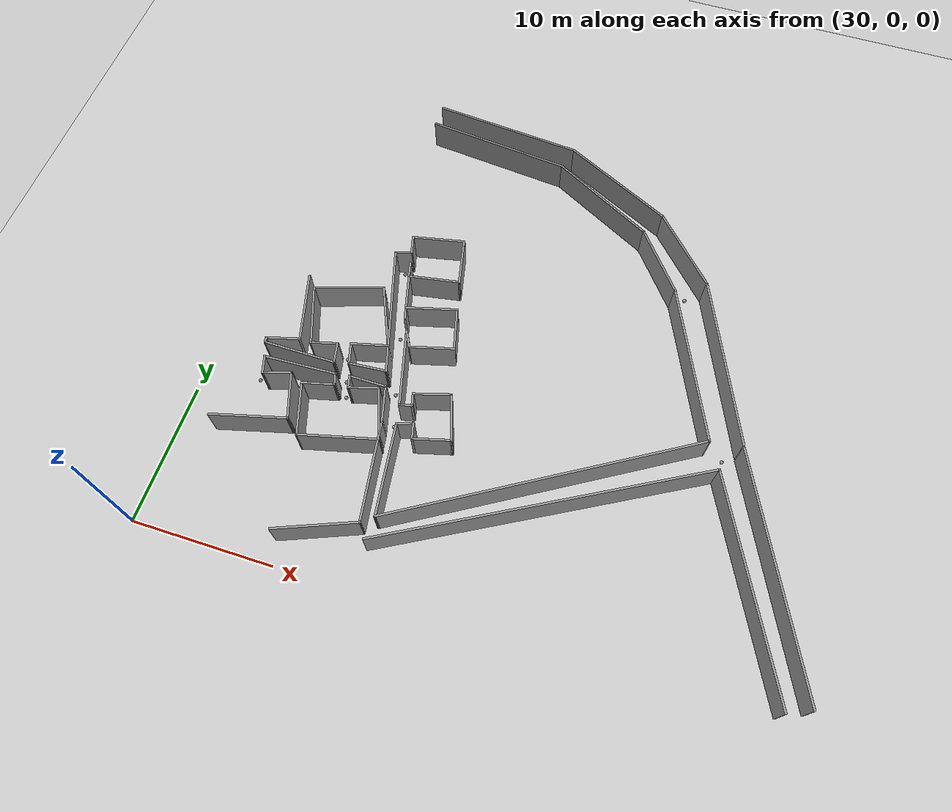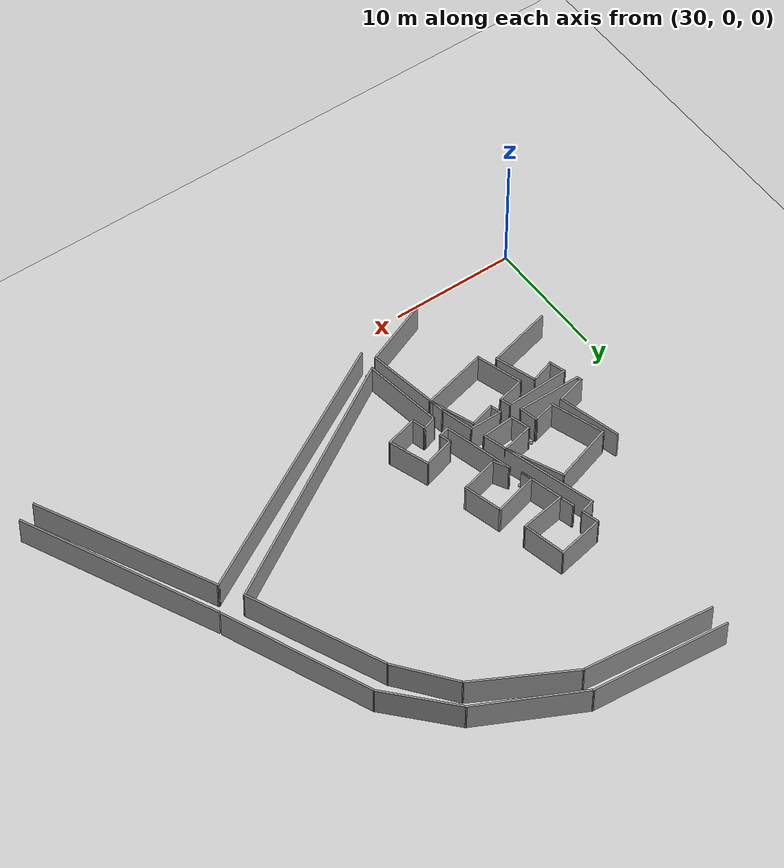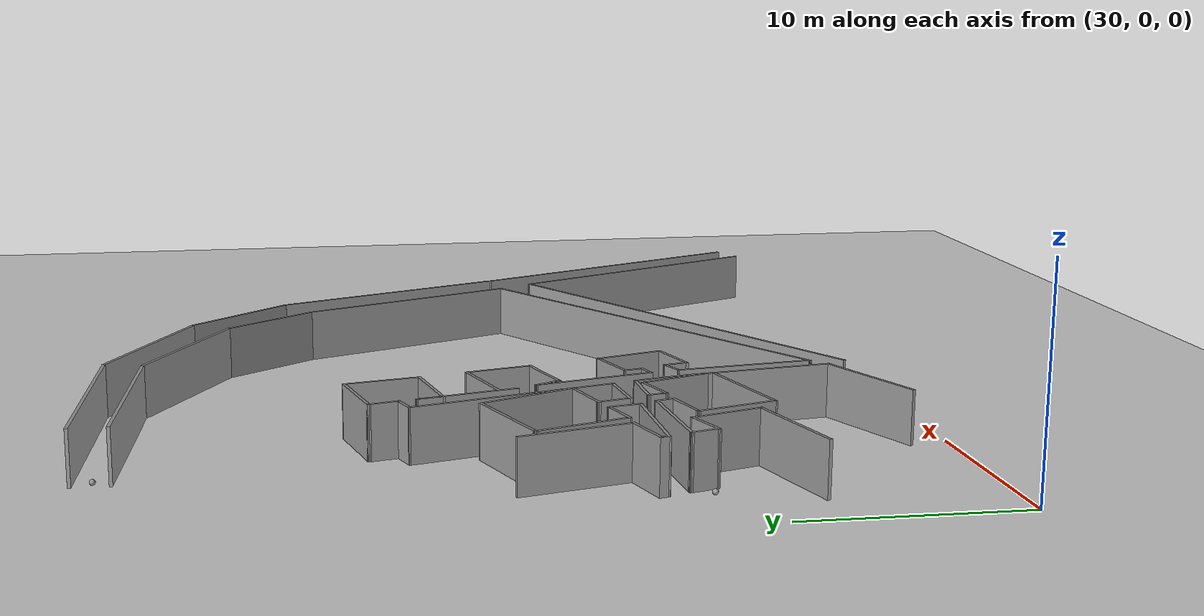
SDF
<sdf version="1.7">
 <world name="default">
  <model name="ground_plane">
   <static>1</static>
   <link name="link">
    <collision name="collision">
     <geometry><plane><normal>0 0 1</normal><size>100 100</size></plane></geometry>
     <surface><friction><ode><mu>100</mu><mu2>50</mu2></ode></friction></surface>
    </collision>
    <visual name="visual">
     <cast_shadows>0</cast_shadows>
     <geometry><plane><normal>0 0 1</normal><size>100 100</size></plane></geometry>
     <material>
      <script><uri>file://media/materials/scripts/gazebo.material</uri><name>Gazebo/Grey</name></script>
     </material>
    </visual>
   </link>
  </model>
  <model name="final_max_v1">
   <pose>-2.5231 0.6891 0 0 -0 0</pose>
   <link name="Wall_122">
    <collision name="Wall_122_Collision">
     <geometry><box><size>11.1366 0.15 2.5</size></box></geometry>
     <pose>0 0 1.25 0 -0 0</pose>
    </collision>
    <visual name="Wall_122_Visual">
     <pose>0 0 1.25 0 -0 0</pose>
     <geometry><box><size>11.1366 0.15 2.5</size></box></geometry>
     <material>
      <script><uri>file://media/materials/scripts/gazebo.material</uri><name>Gazebo/Grey</name></script>
      <ambient>1 1 1 1</ambient>
     </material>
     <meta><layer>0</layer></meta>
    </visual>
    <pose>46.89 36.2808 0 0 -0 -0.083837</pose>
   </link>
   <link name="Wall_123">
    <collision name="Wall_123_Collision">
     <geometry><box><size>8.99588 0.15 2.5</size></box></geometry>
     <pose>0 0 1.25 0 -0 0</pose>
    </collision>
    <visual name="Wall_123_Visual">
     <pose>0 0 1.25 0 -0 0</pose>
     <geometry><box><size>8.99588 0.15 2.5</size></box></geometry>
     <material>
      <script><uri>file://media/materials/scripts/gazebo.material</uri><name>Gazebo/Grey</name></script>
      <ambient>1 1 1 1</ambient>
     </material>
     <meta><layer>0</layer></meta>
    </visual>
    <pose>56.32 33.8428 0 0 -0 -0.463648</pose>
   </link>
   <link name="Wall_124">
    <collision name="Wall_124_Collision">
     <geometry><box><size>6.5786 0.15 2.5</size></box></geometry>
     <pose>0 0 1.25 0 -0 0</pose>
    </collision>
    <visual name="Wall_124_Visual">
     <pose>0 0 1.25 0 -0 0</pose>
     <geometry><box><size>6.5786 0.15 2.5</size></box></geometry>
     <material>
      <script><uri>file://media/materials/scripts/gazebo.material</uri><name>Gazebo/Grey</name></script>
      <ambient>1 1 1 1</ambient>
     </material>
     <meta><layer>0</layer></meta>
    </visual>
    <pose>62.4457 29.4933 0 0 -0 -0.829799</pose>
   </link>
   <link name="Wall_223">
    <collision name="Wall_223_Collision">
     <geometry><box><size>10.6867 0.15 2.5</size></box></geometry>
     <pose>0 0 1.25 0 -0 0</pose>
    </collision>
    <visual name="Wall_223_Visual">
     <pose>0 0 1.25 0 -0 0</pose>
     <geometry><box><size>10.6867 0.15 2.5</size></box></geometry>
     <material>
      <script><uri>file://media/materials/scripts/gazebo.material</uri><name>Gazebo/Grey</name></script>
      <ambient>1 1 1 1</ambient>
     </material>
     <meta><layer>0</layer></meta>
    </visual>
    <pose>46.6509 34.5758 0 0 -0 -0.096193</pose>
   </link>
   <link name="Wall_224">
    <collision name="Wall_224_Collision">
     <geometry><box><size>8.50581 0.15 2.5</size></box></geometry>
     <pose>0 0 1.25 0 -0 0</pose>
    </collision>
    <visual name="Wall_224_Visual">
     <pose>0 0 1.25 0 -0 0</pose>
     <geometry><box><size>8.50581 0.15 2.5</size></box></geometry>
     <material>
      <script><uri>file://media/materials/scripts/gazebo.material</uri><name>Gazebo/Grey</name></script>
      <ambient>1 1 1 1</ambient>
     </material>
     <meta><layer>0</layer></meta>
    </visual>
    <pose>55.5749 32.0918 0 0 -0 -0.493196</pose>
   </link>
   <link name="Wall_225">
    <collision name="Wall_225_Collision">
     <geometry><box><size>5.52393 0.15 2.5</size></box></geometry>
     <pose>0 0 1.25 0 -0 0</pose>
    </collision>
    <visual name="Wall_225_Visual">
     <pose>0 0 1.25 0 -0 0</pose>
     <geometry><box><size>5.52393 0.15 2.5</size></box></geometry>
     <material>
      <script><uri>file://media/materials/scripts/gazebo.material</uri><name>Gazebo/Grey</name></script>
      <ambient>1 1 1 1</ambient>
     </material>
     <meta><layer>0</layer></meta>
    </visual>
    <pose>60.9109 27.9978 0 0 -0 -0.90675</pose>
   </link>
   <link name="Wall_226">
    <collision name="Wall_226_Collision">
     <geometry><box><size>11.7237 0.15 2.5</size></box></geometry>
     <pose>0 0 1.25 0 -0 0</pose>
    </collision>
    <visual name="Wall_226_Visual">
     <pose>0 0 1.25 0 -0 0</pose>
     <geometry><box><size>11.7237 0.15 2.5</size></box></geometry>
     <material>
      <script><uri>file://media/materials/scripts/gazebo.material</uri><name>Gazebo/Grey</name></script>
      <ambient>1 1 1 1</ambient>
     </material>
     <meta><layer>0</layer></meta>
    </visual>
    <pose>64.9129 20.5918 0 0 -0 -1.15338</pose>
   </link>
   <link name="Wall_229">
    <collision name="Wall_229_Collision">
     <geometry><box><size>12.5433 0.15 2.5</size></box></geometry>
     <pose>0 0 1.25 0 -0 0</pose>
    </collision>
    <visual name="Wall_229_Visual">
     <pose>0 0 1.25 0 -0 0</pose>
     <geometry><box><size>12.5433 0.15 2.5</size></box></geometry>
     <material>
      <script><uri>file://media/materials/scripts/gazebo.material</uri><name>Gazebo/Grey</name></script>
      <ambient>1 1 1 1</ambient>
     </material>
     <meta><layer>0</layer></meta>
    </visual>
    <pose>67.0397 21.4191 0 0 -0 -1.16884</pose>
   </link>
   <link name="Wall_246">
    <collision name="Wall_246_Collision">
     <geometry><box><size>5.25 0.15 2.5</size></box></geometry>
     <pose>0 0 1.25 0 -0 0</pose>
    </collision>
    <visual name="Wall_246_Visual">
     <pose>0 0 1.25 0 -0 0</pose>
     <geometry><box><size>5.25 0.15 2.5</size></box></geometry>
     <material>
      <script><uri>file://media/materials/scripts/gazebo.material</uri><name>Gazebo/Grey</name></script>
      <ambient>1 1 1 1</ambient>
     </material>
     <meta><layer>0</layer></meta>
    </visual>
    <pose>38.0136 16.6136 0 0 -0 -1.309</pose>
   </link>
   <link name="Wall_247">
    <collision name="Wall_247_Collision">
     <geometry><box><size>2.5 0.15 2.5</size></box></geometry>
     <pose>0 0 1.25 0 -0 0</pose>
    </collision>
    <visual name="Wall_247_Visual">
     <pose>0 0 1.25 0 -0 0</pose>
     <geometry><box><size>2.5 0.15 2.5</size></box></geometry>
     <material>
      <script><uri>file://media/materials/scripts/gazebo.material</uri><name>Gazebo/Grey</name></script>
      <ambient>1 1 1 1</ambient>
     </material>
     <meta><layer>0</layer></meta>
    </visual>
    <pose>37.5386 13.8464 0 0 -0 -2.87979</pose>
   </link>
   <link name="Wall_248">
    <collision name="Wall_248_Collision">
     <geometry><box><size>0.5 0.15 2.5</size></box></geometry>
     <pose>0 0 1.25 0 -0 0</pose>
    </collision>
    <visual name="Wall_248_Visual">
     <pose>0 0 1.25 0 -0 0</pose>
     <geometry><box><size>0.5 0.15 2.5</size></box></geometry>
     <material>
      <script><uri>file://media/materials/scripts/gazebo.material</uri><name>Gazebo/Grey</name></script>
      <ambient>1 1 1 1</ambient>
     </material>
     <meta><layer>0</layer></meta>
    </visual>
    <pose>36.4489 13.3732 0 0 -0 -1.309</pose>
   </link>
   <link name="Wall_249">
    <collision name="Wall_249_Collision">
     <geometry><box><size>5.25 0.15 2.5</size></box></geometry>
     <pose>0 0 1.25 0 -0 0</pose>
    </collision>
    <visual name="Wall_249_Visual">
     <pose>0 0 1.25 0 -0 0</pose>
     <geometry><box><size>5.25 0.15 2.5</size></box></geometry>
     <material>
      <script><uri>file://media/materials/scripts/gazebo.material</uri><name>Gazebo/Grey</name></script>
      <ambient>1 1 1 1</ambient>
     </material>
     <meta><layer>0</layer></meta>
    </visual>
    <pose>39.0442 13.2042 0 0 -0 0</pose>
   </link>
   <link name="Wall_250">
    <collision name="Wall_250_Collision">
     <geometry><box><size>1.59344 0.15 2.5</size></box></geometry>
     <pose>0 0 1.25 0 -0 0</pose>
    </collision>
    <visual name="Wall_250_Visual">
     <pose>0 0 1.25 0 -0 0</pose>
     <geometry><box><size>1.59344 0.15 2.5</size></box></geometry>
     <material>
      <script><uri>file://media/materials/scripts/gazebo.material</uri><name>Gazebo/Grey</name></script>
      <ambient>1 1 1 1</ambient>
     </material>
     <meta><layer>0</layer></meta>
    </visual>
    <pose>41.4428 13.9098 0 0 -0 1.78212</pose>
   </link>
   <link name="Wall_251">
    <collision name="Wall_251_Collision">
     <geometry><box><size>2 0.15 2.5</size></box></geometry>
     <pose>0 0 1.25 0 -0 0</pose>
    </collision>
    <visual name="Wall_251_Visual">
     <pose>0 0 1.25 0 -0 0</pose>
     <geometry><box><size>2 0.15 2.5</size></box></geometry>
     <material>
      <script><uri>file://media/materials/scripts/gazebo.material</uri><name>Gazebo/Grey</name></script>
      <ambient>1 1 1 1</ambient>
     </material>
     <meta><layer>0</layer></meta>
    </visual>
    <pose>40.3979 14.3761 0 0 -0 -2.87979</pose>
   </link>
   <link name="Wall_252">
    <collision name="Wall_252_Collision">
     <geometry><box><size>4.54595 0.15 2.5</size></box></geometry>
     <pose>0 0 1.25 0 -0 0</pose>
    </collision>
    <visual name="Wall_252_Visual">
     <pose>0 0 1.25 0 -0 0</pose>
     <geometry><box><size>4.54595 0.15 2.5</size></box></geometry>
     <material>
      <script><uri>file://media/materials/scripts/gazebo.material</uri><name>Gazebo/Grey</name></script>
      <ambient>1 1 1 1</ambient>
     </material>
     <meta><layer>0</layer></meta>
    </visual>
    <pose>38.7724 16.2092 0 0 -0 1.91035</pose>
   </link>
   <link name="Wall_253">
    <collision name="Wall_253_Collision">
     <geometry><box><size>5.09377 0.15 2.5</size></box></geometry>
     <pose>0 0 1.25 0 -0 0</pose>
    </collision>
    <visual name="Wall_253_Visual">
     <pose>0 0 1.25 0 -0 0</pose>
     <geometry><box><size>5.09377 0.15 2.5</size></box></geometry>
     <material>
      <script><uri>file://media/materials/scripts/gazebo.material</uri><name>Gazebo/Grey</name></script>
      <ambient>1 1 1 1</ambient>
     </material>
     <meta><layer>0</layer></meta>
    </visual>
    <pose>40.3922 19.0425 0 0 -0 0.312901</pose>
   </link>
   <link name="Wall_254">
    <collision name="Wall_254_Collision">
     <geometry><box><size>4.85576 0.15 2.5</size></box></geometry>
     <pose>0 0 1.25 0 -0 0</pose>
    </collision>
    <visual name="Wall_254_Visual">
     <pose>0 0 1.25 0 -0 0</pose>
     <geometry><box><size>4.85576 0.15 2.5</size></box></geometry>
     <material>
      <script><uri>file://media/materials/scripts/gazebo.material</uri><name>Gazebo/Grey</name></script>
      <ambient>1 1 1 1</ambient>
     </material>
     <meta><layer>0</layer></meta>
    </visual>
    <pose>43.7125 17.6591 0 0 -0 -1.1466</pose>
   </link>
   <link name="Wall_255">
    <collision name="Wall_255_Collision">
     <geometry><box><size>2.71685 0.15 2.5</size></box></geometry>
     <pose>0 0 1.25 0 -0 0</pose>
    </collision>
    <visual name="Wall_255_Visual">
     <pose>0 0 1.25 0 -0 0</pose>
     <geometry><box><size>2.71685 0.15 2.5</size></box></geometry>
     <material>
      <script><uri>file://media/materials/scripts/gazebo.material</uri><name>Gazebo/Grey</name></script>
      <ambient>1 1 1 1</ambient>
     </material>
     <meta><layer>0</layer></meta>
    </visual>
    <pose>43.4358 15.2035 0 0 -0 -2.89661</pose>
   </link>
   <link name="Wall_256">
    <collision name="Wall_256_Collision">
     <geometry><box><size>1.66075 0.15 2.5</size></box></geometry>
     <pose>0 0 1.25 0 -0 0</pose>
    </collision>
    <visual name="Wall_256_Visual">
     <pose>0 0 1.25 0 -0 0</pose>
     <geometry><box><size>1.66075 0.15 2.5</size></box></geometry>
     <material>
      <script><uri>file://media/materials/scripts/gazebo.material</uri><name>Gazebo/Grey</name></script>
      <ambient>1 1 1 1</ambient>
     </material>
     <meta><layer>0</layer></meta>
    </visual>
    <pose>42.3982 14.1659 0 0 -0 -1.2925</pose>
   </link>
   <link name="Wall_257">
    <collision name="Wall_257_Collision">
     <geometry><box><size>2.78673 0.15 2.5</size></box></geometry>
     <pose>0 0 1.25 0 -0 0</pose>
    </collision>
    <visual name="Wall_257_Visual">
     <pose>0 0 1.25 0 -0 0</pose>
     <geometry><box><size>2.78673 0.15 2.5</size></box></geometry>
     <material>
      <script><uri>file://media/materials/scripts/gazebo.material</uri><name>Gazebo/Grey</name></script>
      <ambient>1 1 1 1</ambient>
     </material>
     <meta><layer>0</layer></meta>
    </visual>
    <pose>43.92 13.5433 0 0 -0 0.078784</pose>
   </link>
   <link name="Wall_258">
    <collision name="Wall_258_Collision">
     <geometry><box><size>9.73731 0.15 2.5</size></box></geometry>
     <pose>0 0 1.25 0 -0 0</pose>
    </collision>
    <visual name="Wall_258_Visual">
     <pose>0 0 1.25 0 -0 0</pose>
     <geometry><box><size>9.73731 0.15 2.5</size></box></geometry>
     <material>
      <script><uri>file://media/materials/scripts/gazebo.material</uri><name>Gazebo/Grey</name></script>
      <ambient>1 1 1 1</ambient>
     </material>
     <meta><layer>0</layer></meta>
    </visual>
    <pose>43.8854 18.2471 0 0 -0 1.85603</pose>
   </link>
   <link name="Wall_259">
    <collision name="Wall_259_Collision">
     <geometry><box><size>1.30954 0.15 2.5</size></box></geometry>
     <pose>0 0 1.25 0 -0 0</pose>
    </collision>
    <visual name="Wall_259_Visual">
     <pose>0 0 1.25 0 -0 0</pose>
     <geometry><box><size>1.30954 0.15 2.5</size></box></geometry>
     <material>
      <script><uri>file://media/materials/scripts/gazebo.material</uri><name>Gazebo/Grey</name></script>
      <ambient>1 1 1 1</ambient>
     </material>
     <meta><layer>0</layer></meta>
    </visual>
    <pose>43.0899 23.02 0 0 -0 0.302885</pose>
   </link>
   <link name="Wall_260">
    <collision name="Wall_260_Collision">
     <geometry><box><size>1.5 0.15 2.5</size></box></geometry>
     <pose>0 0 1.25 0 -0 0</pose>
    </collision>
    <visual name="Wall_260_Visual">
     <pose>0 0 1.25 0 -0 0</pose>
     <geometry><box><size>1.5 0.15 2.5</size></box></geometry>
     <material>
      <script><uri>file://media/materials/scripts/gazebo.material</uri><name>Gazebo/Grey</name></script>
      <ambient>1 1 1 1</ambient>
     </material>
     <meta><layer>0</layer></meta>
    </visual>
    <pose>43.4686 23.8449 0 0 -0 1.8326</pose>
   </link>
   <link name="Wall_261">
    <collision name="Wall_261_Collision">
     <geometry><box><size>3.89984 0.15 2.5</size></box></geometry>
     <pose>0 0 1.25 0 -0 0</pose>
    </collision>
    <visual name="Wall_261_Visual">
     <pose>0 0 1.25 0 -0 0</pose>
     <geometry><box><size>3.89984 0.15 2.5</size></box></geometry>
     <material>
      <script><uri>file://media/materials/scripts/gazebo.material</uri><name>Gazebo/Grey</name></script>
      <ambient>1 1 1 1</ambient>
     </material>
     <meta><layer>0</layer></meta>
    </visual>
    <pose>45.1287 24.8825 0 0 -0 0.207133</pose>
   </link>
   <link name="Wall_262">
    <collision name="Wall_262_Collision">
     <geometry><box><size>3.6238 0.15 2.5</size></box></geometry>
     <pose>0 0 1.25 0 -0 0</pose>
    </collision>
    <visual name="Wall_262_Visual">
     <pose>0 0 1.25 0 -0 0</pose>
     <geometry><box><size>3.6238 0.15 2.5</size></box></geometry>
     <material>
      <script><uri>file://media/materials/scripts/gazebo.material</uri><name>Gazebo/Grey</name></script>
      <ambient>1 1 1 1</ambient>
     </material>
     <meta><layer>0</layer></meta>
    </visual>
    <pose>47.344 23.5733 0 0 -0 -1.34997</pose>
   </link>
   <link name="Wall_263">
    <collision name="Wall_263_Collision">
     <geometry><box><size>3.80044 0.15 2.5</size></box></geometry>
     <pose>0 0 1.25 0 -0 0</pose>
    </collision>
    <visual name="Wall_263_Visual">
     <pose>0 0 1.25 0 -0 0</pose>
     <geometry><box><size>3.80044 0.15 2.5</size></box></geometry>
     <material>
      <script><uri>file://media/materials/scripts/gazebo.material</uri><name>Gazebo/Grey</name></script>
      <ambient>1 1 1 1</ambient>
     </material>
     <meta><layer>0</layer></meta>
    </visual>
    <pose>45.926 21.5673 0 0 -0 -2.97021</pose>
   </link>
   <link name="Wall_264">
    <collision name="Wall_264_Collision">
     <geometry><box><size>1.29082 0.15 2.5</size></box></geometry>
     <pose>0 0 1.25 0 -0 0</pose>
    </collision>
    <visual name="Wall_264_Visual">
     <pose>0 0 1.25 0 -0 0</pose>
     <geometry><box><size>1.29082 0.15 2.5</size></box></geometry>
     <material>
      <script><uri>file://media/materials/scripts/gazebo.material</uri><name>Gazebo/Grey</name></script>
      <ambient>1 1 1 1</ambient>
     </material>
     <meta><layer>0</layer></meta>
    </visual>
    <pose>43.9892 21.8094 0 0 -0 1.81577</pose>
   </link>
   <link name="Wall_265">
    <collision name="Wall_265_Collision">
     <geometry><box><size>4.75 0.15 2.5</size></box></geometry>
     <pose>0 0 1.25 0 -0 0</pose>
    </collision>
    <visual name="Wall_265_Visual">
     <pose>0 0 1.25 0 -0 0</pose>
     <geometry><box><size>4.75 0.15 2.5</size></box></geometry>
     <material>
      <script><uri>file://media/materials/scripts/gazebo.material</uri><name>Gazebo/Grey</name></script>
      <ambient>1 1 1 1</ambient>
     </material>
     <meta><layer>0</layer></meta>
    </visual>
    <pose>44.4461 20.1412 0 0 -0 -1.309</pose>
   </link>
   <link name="Wall_266">
    <collision name="Wall_266_Collision">
     <geometry><box><size>1 0.15 2.5</size></box></geometry>
     <pose>0 0 1.25 0 -0 0</pose>
    </collision>
    <visual name="Wall_266_Visual">
     <pose>0 0 1.25 0 -0 0</pose>
     <geometry><box><size>1 0.15 2.5</size></box></geometry>
     <material>
      <script><uri>file://media/materials/scripts/gazebo.material</uri><name>Gazebo/Grey</name></script>
      <ambient>1 1 1 1</ambient>
     </material>
     <meta><layer>0</layer></meta>
    </visual>
    <pose>44.9314 18.3301 0 0 -0 1.8326</pose>
   </link>
   <link name="Wall_267">
    <collision name="Wall_267_Collision">
     <geometry><box><size>3.75 0.15 2.5</size></box></geometry>
     <pose>0 0 1.25 0 -0 0</pose>
    </collision>
    <visual name="Wall_267_Visual">
     <pose>0 0 1.25 0 -0 0</pose>
     <geometry><box><size>3.75 0.15 2.5</size></box></geometry>
     <material>
      <script><uri>file://media/materials/scripts/gazebo.material</uri><name>Gazebo/Grey</name></script>
      <ambient>1 1 1 1</ambient>
     </material>
     <meta><layer>0</layer></meta>
    </visual>
    <pose>46.5601 19.2065 0 0 -0 0.261799</pose>
   </link>
   <link name="Wall_268">
    <collision name="Wall_268_Collision">
     <geometry><box><size>3.25 0.15 2.5</size></box></geometry>
     <pose>0 0 1.25 0 -0 0</pose>
    </collision>
    <visual name="Wall_268_Visual">
     <pose>0 0 1.25 0 -0 0</pose>
     <geometry><box><size>3.25 0.15 2.5</size></box></geometry>
     <material>
      <script><uri>file://media/materials/scripts/gazebo.material</uri><name>Gazebo/Grey</name></script>
      <ambient>1 1 1 1</ambient>
     </material>
     <meta><layer>0</layer></meta>
    </visual>
    <pose>48.6999 18.1752 0 0 -0 -1.309</pose>
   </link>
   <link name="Wall_269">
    <collision name="Wall_269_Collision">
     <geometry><box><size>3.25 0.15 2.5</size></box></geometry>
     <pose>0 0 1.25 0 -0 0</pose>
    </collision>
    <visual name="Wall_269_Visual">
     <pose>0 0 1.25 0 -0 0</pose>
     <geometry><box><size>3.25 0.15 2.5</size></box></geometry>
     <material>
      <script><uri>file://media/materials/scripts/gazebo.material</uri><name>Gazebo/Grey</name></script>
      <ambient>1 1 1 1</ambient>
     </material>
     <meta><layer>0</layer></meta>
    </visual>
    <pose>47.6039 16.2768 0 0 -0 -2.87979</pose>
   </link>
   <link name="Wall_270">
    <collision name="Wall_270_Collision">
     <geometry><box><size>1.3937 0.15 2.5</size></box></geometry>
     <pose>0 0 1.25 0 -0 0</pose>
    </collision>
    <visual name="Wall_270_Visual">
     <pose>0 0 1.25 0 -0 0</pose>
     <geometry><box><size>1.3937 0.15 2.5</size></box></geometry>
     <material>
      <script><uri>file://media/materials/scripts/gazebo.material</uri><name>Gazebo/Grey</name></script>
      <ambient>1 1 1 1</ambient>
     </material>
     <meta><layer>0</layer></meta>
    </visual>
    <pose>45.8088 16.4215 0 0 -0 2.07031</pose>
   </link>
   <link name="Wall_271">
    <collision name="Wall_271_Collision">
     <geometry><box><size>5.75 0.15 2.5</size></box></geometry>
     <pose>0 0 1.25 0 -0 0</pose>
    </collision>
    <visual name="Wall_271_Visual">
     <pose>0 0 1.25 0 -0 0</pose>
     <geometry><box><size>5.75 0.15 2.5</size></box></geometry>
     <material>
      <script><uri>file://media/materials/scripts/gazebo.material</uri><name>Gazebo/Grey</name></script>
      <ambient>1 1 1 1</ambient>
     </material>
     <meta><layer>0</layer></meta>
    </visual>
    <pose>46.2356 14.2628 0 0 -0 -1.309</pose>
   </link>
   <link name="Wall_272">
    <collision name="Wall_272_Collision">
     <geometry><box><size>1 0.15 2.5</size></box></geometry>
     <pose>0 0 1.25 0 -0 0</pose>
    </collision>
    <visual name="Wall_272_Visual">
     <pose>0 0 1.25 0 -0 0</pose>
     <geometry><box><size>1 0.15 2.5</size></box></geometry>
     <material>
      <script><uri>file://media/materials/scripts/gazebo.material</uri><name>Gazebo/Grey</name></script>
      <ambient>1 1 1 1</ambient>
     </material>
     <meta><layer>0</layer></meta>
    </visual>
    <pose>47.3709 11.6682 0 0 -0 0.261799</pose>
   </link>
   <link name="Wall_273">
    <collision name="Wall_273_Collision">
     <geometry><box><size>1 0.15 2.5</size></box></geometry>
     <pose>0 0 1.25 0 -0 0</pose>
    </collision>
    <visual name="Wall_273_Visual">
     <pose>0 0 1.25 0 -0 0</pose>
     <geometry><box><size>1 0.15 2.5</size></box></geometry>
     <material>
      <script><uri>file://media/materials/scripts/gazebo.material</uri><name>Gazebo/Grey</name></script>
      <ambient>1 1 1 1</ambient>
     </material>
     <meta><layer>0</layer></meta>
    </visual>
    <pose>47.6714 12.1887 0 0 -0 1.8326</pose>
   </link>
   <link name="Wall_274">
    <collision name="Wall_274_Collision">
     <geometry><box><size>2.70849 0.15 2.5</size></box></geometry>
     <pose>0 0 1.25 0 -0 0</pose>
    </collision>
    <visual name="Wall_274_Visual">
     <pose>0 0 1.25 0 -0 0</pose>
     <geometry><box><size>2.70849 0.15 2.5</size></box></geometry>
     <material>
      <script><uri>file://media/materials/scripts/gazebo.material</uri><name>Gazebo/Grey</name></script>
      <ambient>1 1 1 1</ambient>
     </material>
     <meta><layer>0</layer></meta>
    </visual>
    <pose>48.7888 12.9596 0 0 -0 0.285615</pose>
   </link>
   <link name="Wall_275">
    <collision name="Wall_275_Collision">
     <geometry><box><size>3.45989 0.15 2.5</size></box></geometry>
     <pose>0 0 1.25 0 -0 0</pose>
    </collision>
    <visual name="Wall_275_Visual">
     <pose>0 0 1.25 0 -0 0</pose>
     <geometry><box><size>3.45989 0.15 2.5</size></box></geometry>
     <material>
      <script><uri>file://media/materials/scripts/gazebo.material</uri><name>Gazebo/Grey</name></script>
      <ambient>1 1 1 1</ambient>
     </material>
     <meta><layer>0</layer></meta>
    </visual>
    <pose>50.5576 11.7562 0 0 -0 -1.23755</pose>
   </link>
   <link name="Wall_276">
    <collision name="Wall_276_Collision">
     <geometry><box><size>2.75 0.15 2.5</size></box></geometry>
     <pose>0 0 1.25 0 -0 0</pose>
    </collision>
    <visual name="Wall_276_Visual">
     <pose>0 0 1.25 0 -0 0</pose>
     <geometry><box><size>2.75 0.15 2.5</size></box></geometry>
     <material>
      <script><uri>file://media/materials/scripts/gazebo.material</uri><name>Gazebo/Grey</name></script>
      <ambient>1 1 1 1</ambient>
     </material>
     <meta><layer>0</layer></meta>
    </visual>
    <pose>49.8432 9.85581 0 0 -0 -2.87979</pose>
   </link>
   <link name="Wall_277">
    <collision name="Wall_277_Collision">
     <geometry><box><size>1.25 0.15 2.5</size></box></geometry>
     <pose>0 0 1.25 0 -0 0</pose>
    </collision>
    <visual name="Wall_277_Visual">
     <pose>0 0 1.25 0 -0 0</pose>
     <geometry><box><size>1.25 0.15 2.5</size></box></geometry>
     <material>
      <script><uri>file://media/materials/scripts/gazebo.material</uri><name>Gazebo/Grey</name></script>
      <ambient>1 1 1 1</ambient>
     </material>
     <meta><layer>0</layer></meta>
    </visual>
    <pose>48.4452 10.0506 0 0 -0 1.8326</pose>
   </link>
   <link name="Wall_279">
    <collision name="Wall_279_Collision">
     <geometry><box><size>2.75 0.15 2.5</size></box></geometry>
     <pose>0 0 1.25 0 -0 0</pose>
    </collision>
    <visual name="Wall_279_Visual">
     <pose>0 0 1.25 0 -0 0</pose>
     <geometry><box><size>2.75 0.15 2.5</size></box></geometry>
     <material>
      <script><uri>file://media/materials/scripts/gazebo.material</uri><name>Gazebo/Grey</name></script>
      <ambient>1 1 1 1</ambient>
     </material>
     <meta><layer>0</layer></meta>
    </visual>
    <pose>45.9379 11.294 0 0 -0 1.8326</pose>
   </link>
   <link name="Wall_280">
    <collision name="Wall_280_Collision">
     <geometry><box><size>2.75 0.15 2.5</size></box></geometry>
     <pose>0 0 1.25 0 -0 0</pose>
    </collision>
    <visual name="Wall_280_Visual">
     <pose>0 0 1.25 0 -0 0</pose>
     <geometry><box><size>2.75 0.15 2.5</size></box></geometry>
     <material>
      <script><uri>file://media/materials/scripts/gazebo.material</uri><name>Gazebo/Grey</name></script>
      <ambient>1 1 1 1</ambient>
     </material>
     <meta><layer>0</layer></meta>
    </visual>
    <pose>44.3014 12.5497 0 0 -0 3.14159</pose>
   </link>
   <link name="Wall_281">
    <collision name="Wall_281_Collision">
     <geometry><box><size>1 0.15 2.5</size></box></geometry>
     <pose>0 0 1.25 0 -0 0</pose>
    </collision>
    <visual name="Wall_281_Visual">
     <pose>0 0 1.25 0 -0 0</pose>
     <geometry><box><size>1 0.15 2.5</size></box></geometry>
     <material>
      <script><uri>file://media/materials/scripts/gazebo.material</uri><name>Gazebo/Grey</name></script>
      <ambient>1 1 1 1</ambient>
     </material>
     <meta><layer>0</layer></meta>
    </visual>
    <pose>43.1114 12.1392 0 0 -0 -1.309</pose>
   </link>
   <link name="Wall_282">
    <collision name="Wall_282_Collision">
     <geometry><box><size>2.21277 0.15 2.5</size></box></geometry>
     <pose>0 0 1.25 0 -0 0</pose>
    </collision>
    <visual name="Wall_282_Visual">
     <pose>0 0 1.25 0 -0 0</pose>
     <geometry><box><size>2.21277 0.15 2.5</size></box></geometry>
     <material>
      <script><uri>file://media/materials/scripts/gazebo.material</uri><name>Gazebo/Grey</name></script>
      <ambient>1 1 1 1</ambient>
     </material>
     <meta><layer>0</layer></meta>
    </visual>
    <pose>44.2128 12.0131 0 0 -0 0.27937</pose>
   </link>
   <link name="Wall_283">
    <collision name="Wall_283_Collision">
     <geometry><box><size>3.88124 0.15 2.5</size></box></geometry>
     <pose>0 0 1.25 0 -0 0</pose>
    </collision>
    <visual name="Wall_283_Visual">
     <pose>0 0 1.25 0 -0 0</pose>
     <geometry><box><size>3.88124 0.15 2.5</size></box></geometry>
     <material>
      <script><uri>file://media/materials/scripts/gazebo.material</uri><name>Gazebo/Grey</name></script>
      <ambient>1 1 1 1</ambient>
     </material>
     <meta><layer>0</layer></meta>
    </visual>
    <pose>45.8659 10.5532 0 0 -0 -1.20825</pose>
   </link>
   <link name="Wall_284">
    <collision name="Wall_284_Collision">
     <geometry><box><size>5.6061 0.15 2.5</size></box></geometry>
     <pose>0 0 1.25 0 -0 0</pose>
    </collision>
    <visual name="Wall_284_Visual">
     <pose>0 0 1.25 0 -0 0</pose>
     <geometry><box><size>5.6061 0.15 2.5</size></box></geometry>
     <material>
      <script><uri>file://media/materials/scripts/gazebo.material</uri><name>Gazebo/Grey</name></script>
      <ambient>1 1 1 1</ambient>
     </material>
     <meta><layer>0</layer></meta>
    </visual>
    <pose>43.8809 8.14718 0 0 -0 -2.89661</pose>
   </link>
   <link name="Wall_285">
    <collision name="Wall_285_Collision">
     <geometry><box><size>3.93562 0.15 2.5</size></box></geometry>
     <pose>0 0 1.25 0 -0 0</pose>
    </collision>
    <visual name="Wall_285_Visual">
     <pose>0 0 1.25 0 -0 0</pose>
     <geometry><box><size>3.93562 0.15 2.5</size></box></geometry>
     <material>
      <script><uri>file://media/materials/scripts/gazebo.material</uri><name>Gazebo/Grey</name></script>
      <ambient>1 1 1 1</ambient>
     </material>
     <meta><layer>0</layer></meta>
    </visual>
    <pose>40.6629 9.29002 0 0 -0 1.87747</pose>
   </link>
   <link name="Wall_286">
    <collision name="Wall_286_Collision">
     <geometry><box><size>2.38204 0.15 2.5</size></box></geometry>
     <pose>0 0 1.25 0 -0 0</pose>
    </collision>
    <visual name="Wall_286_Visual">
     <pose>0 0 1.25 0 -0 0</pose>
     <geometry><box><size>2.38204 0.15 2.5</size></box></geometry>
     <material>
      <script><uri>file://media/materials/scripts/gazebo.material</uri><name>Gazebo/Grey</name></script>
      <ambient>1 1 1 1</ambient>
     </material>
     <meta><layer>0</layer></meta>
    </visual>
    <pose>41.1742 11.3652 0 0 -0 0.244979</pose>
   </link>
   <link name="Wall_287">
    <collision name="Wall_287_Collision">
     <geometry><box><size>0.968127 0.15 2.5</size></box></geometry>
     <pose>0 0 1.25 0 -0 0</pose>
    </collision>
    <visual name="Wall_287_Visual">
     <pose>0 0 1.25 0 -0 0</pose>
     <geometry><box><size>0.968127 0.15 2.5</size></box></geometry>
     <material>
      <script><uri>file://media/materials/scripts/gazebo.material</uri><name>Gazebo/Grey</name></script>
      <ambient>1 1 1 1</ambient>
     </material>
     <meta><layer>0</layer></meta>
    </visual>
    <pose>42.1366 12.0268 0 0 -0 1.86929</pose>
   </link>
   <link name="Wall_288">
    <collision name="Wall_288_Collision">
     <geometry><box><size>5.2684 0.15 2.5</size></box></geometry>
     <pose>0 0 1.25 0 -0 0</pose>
    </collision>
    <visual name="Wall_288_Visual">
     <pose>0 0 1.25 0 -0 0</pose>
     <geometry><box><size>5.2684 0.15 2.5</size></box></geometry>
     <material>
      <script><uri>file://media/materials/scripts/gazebo.material</uri><name>Gazebo/Grey</name></script>
      <ambient>1 1 1 1</ambient>
     </material>
     <meta><layer>0</layer></meta>
    </visual>
    <pose>39.4599 12.2975 0 0 -0 -3.09457</pose>
   </link>
   <link name="Wall_289">
    <collision name="Wall_289_Collision">
     <geometry><box><size>1.40597 0.15 2.5</size></box></geometry>
     <pose>0 0 1.25 0 -0 0</pose>
    </collision>
    <visual name="Wall_289_Visual">
     <pose>0 0 1.25 0 -0 0</pose>
     <geometry><box><size>1.40597 0.15 2.5</size></box></geometry>
     <material>
      <script><uri>file://media/materials/scripts/gazebo.material</uri><name>Gazebo/Grey</name></script>
      <ambient>1 1 1 1</ambient>
     </material>
     <meta><layer>0</layer></meta>
    </visual>
    <pose>37.084 11.5757 0 0 -0 -1.27934</pose>
   </link>
   <link name="Wall_290">
    <collision name="Wall_290_Collision">
     <geometry><box><size>2.10926 0.15 2.5</size></box></geometry>
     <pose>0 0 1.25 0 -0 0</pose>
    </collision>
    <visual name="Wall_290_Visual">
     <pose>0 0 1.25 0 -0 0</pose>
     <geometry><box><size>2.10926 0.15 2.5</size></box></geometry>
     <material>
      <script><uri>file://media/materials/scripts/gazebo.material</uri><name>Gazebo/Grey</name></script>
      <ambient>1 1 1 1</ambient>
     </material>
     <meta><layer>0</layer></meta>
    </visual>
    <pose>38.1968 11.275 0 0 -0 0.312042</pose>
   </link>
   <link name="Wall_291">
    <collision name="Wall_291_Collision">
     <geometry><box><size>3.51678 0.15 2.5</size></box></geometry>
     <pose>0 0 1.25 0 -0 0</pose>
    </collision>
    <visual name="Wall_291_Visual">
     <pose>0 0 1.25 0 -0 0</pose>
     <geometry><box><size>3.51678 0.15 2.5</size></box></geometry>
     <material>
      <script><uri>file://media/materials/scripts/gazebo.material</uri><name>Gazebo/Grey</name></script>
      <ambient>1 1 1 1</ambient>
     </material>
     <meta><layer>0</layer></meta>
    </visual>
    <pose>39.6704 9.98175 0 0 -0 -1.2434</pose>
   </link>
   <link name="Wall_292">
    <collision name="Wall_292_Collision">
     <geometry><box><size>5.43122 0.15 2.5</size></box></geometry>
     <pose>0 0 1.25 0 -0 0</pose>
    </collision>
    <visual name="Wall_292_Visual">
     <pose>0 0 1.25 0 -0 0</pose>
     <geometry><box><size>5.43122 0.15 2.5</size></box></geometry>
     <material>
      <script><uri>file://media/materials/scripts/gazebo.material</uri><name>Gazebo/Grey</name></script>
      <ambient>1 1 1 1</ambient>
     </material>
     <meta><layer>0</layer></meta>
    </visual>
    <pose>37.6554 7.72613 0 0 -0 -2.88833</pose>
   </link>
   <link name="Wall_306">
    <collision name="Wall_306_Collision">
     <geometry><box><size>23.3769 0.15 2.5</size></box></geometry>
     <pose>0 0 1.25 0 -0 0</pose>
    </collision>
    <visual name="Wall_306_Visual">
     <pose>0 0 1.25 0 -0 0</pose>
     <geometry><box><size>23.3769 0.15 2.5</size></box></geometry>
     <material>
      <script><uri>file://media/materials/scripts/gazebo.material</uri><name>Gazebo/Grey</name></script>
      <ambient>1 1 1 1</ambient>
     </material>
     <meta><layer>0</layer></meta>
    </visual>
    <pose>58.1379 7.89318 0 0 -0 -2.63362</pose>
   </link>
   <link name="Wall_315">
    <collision name="Wall_315_Collision">
     <geometry><box><size>7.1054 0.15 2.5</size></box></geometry>
     <pose>0 0 1.25 0 -0 0</pose>
    </collision>
    <visual name="Wall_315_Visual">
     <pose>0 0 1.25 0 -0 0</pose>
     <geometry><box><size>7.1054 0.15 2.5</size></box></geometry>
     <material>
      <script><uri>file://media/materials/scripts/gazebo.material</uri><name>Gazebo/Grey</name></script>
      <ambient>1 1 1 1</ambient>
     </material>
     <meta><layer>0</layer></meta>
    </visual>
    <pose>46.8212 6.60391 0 0 -0 -1.41289</pose>
   </link>
   <link name="Wall_316">
    <collision name="Wall_316_Collision">
     <geometry><box><size>5.79064 0.15 2.5</size></box></geometry>
     <pose>0 0 1.25 0 -0 0</pose>
    </collision>
    <visual name="Wall_316_Visual">
     <pose>0 0 1.25 0 -0 0</pose>
     <geometry><box><size>5.79064 0.15 2.5</size></box></geometry>
     <material>
      <script><uri>file://media/materials/scripts/gazebo.material</uri><name>Gazebo/Grey</name></script>
      <ambient>1 1 1 1</ambient>
     </material>
     <meta><layer>0</layer></meta>
    </visual>
    <pose>44.7516 2.11685 0 0 -0 -2.75911</pose>
   </link>
   <link name="Wall_320">
    <collision name="Wall_320_Collision">
     <geometry><box><size>1.26963 0.15 2.5</size></box></geometry>
     <pose>0 0 1.25 0 -0 0</pose>
    </collision>
    <visual name="Wall_320_Visual">
     <pose>0 0 1.25 0 -0 0</pose>
     <geometry><box><size>1.26963 0.15 2.5</size></box></geometry>
     <material>
      <script><uri>file://media/materials/scripts/gazebo.material</uri><name>Gazebo/Grey</name></script>
      <ambient>1 1 1 1</ambient>
     </material>
     <meta><layer>0</layer></meta>
    </visual>
    <pose>47.7753 10.3944 0 0 -0 0.34139</pose>
   </link>
   <link name="Wall_322">
    <collision name="Wall_322_Collision">
     <geometry><box><size>6.58941 0.15 2.5</size></box></geometry>
     <pose>0 0 1.25 0 -0 0</pose>
    </collision>
    <visual name="Wall_322_Visual">
     <pose>0 0 1.25 0 -0 0</pose>
     <geometry><box><size>6.58941 0.15 2.5</size></box></geometry>
     <material>
      <script><uri>file://media/materials/scripts/gazebo.material</uri><name>Gazebo/Grey</name></script>
      <ambient>1 1 1 1</ambient>
     </material>
     <meta><layer>0</layer></meta>
    </visual>
    <pose>47.6989 7.01907 0 0 -0 -1.43022</pose>
   </link>
   <link name="Wall_324">
    <collision name="Wall_324_Collision">
     <geometry><box><size>22.4373 0.15 2.5</size></box></geometry>
     <pose>0 0 1.25 0 -0 0</pose>
    </collision>
    <visual name="Wall_324_Visual">
     <pose>0 0 1.25 0 -0 0</pose>
     <geometry><box><size>22.4373 0.15 2.5</size></box></geometry>
     <material>
      <script><uri>file://media/materials/scripts/gazebo.material</uri><name>Gazebo/Grey</name></script>
      <ambient>1 1 1 1</ambient>
     </material>
     <meta><layer>0</layer></meta>
    </visual>
    <pose>57.7044 9.56648 0 0 -0 0.540629</pose>
   </link>
   <link name="Wall_699">
    <collision name="Wall_699_Collision">
     <geometry><box><size>16.4712 0.15 2.5</size></box></geometry>
     <pose>0 0 1.25 0 -0 0</pose>
    </collision>
    <visual name="Wall_699_Visual">
     <pose>0 0 1.25 0 -0 0</pose>
     <geometry><box><size>16.4712 0.15 2.5</size></box></geometry>
     <material>
      <script><uri>file://media/materials/scripts/gazebo.material</uri><name>Gazebo/Grey</name></script>
      <ambient>1 1 1 1</ambient>
     </material>
     <meta><layer>0</layer></meta>
    </visual>
    <pose>73.0239 8.08144 0 0 -0 -1.13153</pose>
   </link>
   <link name="Wall_712">
    <collision name="Wall_712_Collision">
     <geometry><box><size>15.2104 0.15 2.5</size></box></geometry>
     <pose>0 0 1.25 0 -0 0</pose>
    </collision>
    <visual name="Wall_712_Visual">
     <pose>0 0 1.25 0 -0 0</pose>
     <geometry><box><size>15.2104 0.15 2.5</size></box></geometry>
     <material>
      <script><uri>file://media/materials/scripts/gazebo.material</uri><name>Gazebo/Grey</name></script>
      <ambient>1 1 1 1</ambient>
     </material>
     <meta><layer>0</layer></meta>
    </visual>
    <pose>71.6067 6.78411 0 0 -0 -1.11394</pose>
   </link>
   <static>1</static>
  </model>
  <model name="id_26">
   <pose>45.2762 3.41028 0.128457 0 -0 0</pose>
   <link name="link">
    <inertial>
     <mass>1</mass>
     <inertia><ixx>0.1</ixx><ixy>0</ixy><ixz>0</ixz><iyy>0.1</iyy><iyz>0</iyz><izz>0.1</izz></inertia>
    </inertial>
    <collision name="collision"><geometry><sphere><radius>0.128457</radius></sphere></geometry></collision>
    <visual name="visual">
     <geometry><sphere><radius>0.128457</radius></sphere></geometry>
     <material>
      <script><name>Gazebo/Grey</name><uri>file://media/materials/scripts/gazebo.material</uri></script>
     </material>
    </visual>
   </link>
  </model>
  <model name="id_27">
   <pose>44.1358 11.4726 0.128457 0 -0 0</pose>
   <link name="link">
    <inertial>
     <mass>1</mass>
     <inertia><ixx>0.1</ixx><ixy>0</ixy><ixz>0</ixz><iyy>0.1</iyy><iyz>0</iyz><izz>0.1</izz></inertia>
    </inertial>
    <collision name="collision"><geometry><sphere><radius>0.128457</radius></sphere></geometry></collision>
    <visual name="visual">
     <geometry><sphere><radius>0.128457</radius></sphere></geometry>
     <material>
      <script><name>Gazebo/Grey</name><uri>file://media/materials/scripts/gazebo.material</uri></script>
     </material>
    </visual>
   </link>
  </model>
  <model name="id_28">
   <pose>43.4065 13.7744 0.128457 0 -0 0</pose>
   <link name="link">
    <inertial>
     <mass>1</mass>
     <inertia><ixx>0.1</ixx><ixy>0</ixy><ixz>0</ixz><iyy>0.1</iyy><iyz>0</iyz><izz>0.1</izz></inertia>
    </inertial>
    <collision name="collision"><geometry><sphere><radius>0.128457</radius></sphere></geometry></collision>
    <visual name="visual">
     <geometry><sphere><radius>0.128457</radius></sphere></geometry>
     <material>
      <script><name>Gazebo/Grey</name><uri>file://media/materials/scripts/gazebo.material</uri></script>
     </material>
    </visual>
   </link>
  </model>
  <model name="id_29">
   <pose>42.194 18.0316 0.128457 0 -0 0</pose>
   <link name="link">
    <inertial>
     <mass>1</mass>
     <inertia><ixx>0.1</ixx><ixy>0</ixy><ixz>0</ixz><iyy>0.1</iyy><iyz>0</iyz><izz>0.1</izz></inertia>
    </inertial>
    <collision name="collision"><geometry><sphere><radius>0.128457</radius></sphere></geometry></collision>
    <visual name="visual">
     <geometry><sphere><radius>0.128457</radius></sphere></geometry>
     <material>
      <script><name>Gazebo/Grey</name><uri>file://media/materials/scripts/gazebo.material</uri></script>
     </material>
    </visual>
   </link>
  </model>
  <model name="id_30">
   <pose>40.6421 23.3199 0.128457 0 -0 0</pose>
   <link name="link">
    <inertial>
     <mass>1</mass>
     <inertia><ixx>0.1</ixx><ixy>0</ixy><ixz>0</ixz><iyy>0.1</iyy><iyz>0</iyz><izz>0.1</izz></inertia>
    </inertial>
    <collision name="collision"><geometry><sphere><radius>0.128457</radius></sphere></geometry></collision>
    <visual name="visual">
     <geometry><sphere><radius>0.128457</radius></sphere></geometry>
     <material>
      <script><name>Gazebo/Grey</name><uri>file://media/materials/scripts/gazebo.material</uri></script>
     </material>
    </visual>
   </link>
  </model>
  <model name="id_31">
   <pose>39.7628 13.6668 0.128457 0 -0 0</pose>
   <link name="link">
    <inertial>
     <mass>1</mass>
     <inertia><ixx>0.1</ixx><ixy>0</ixy><ixz>0</ixz><iyy>0.1</iyy><iyz>0</iyz><izz>0.1</izz></inertia>
    </inertial>
    <collision name="collision"><geometry><sphere><radius>0.128457</radius></sphere></geometry></collision>
    <visual name="visual">
     <geometry><sphere><radius>0.128457</radius></sphere></geometry>
     <material>
      <script><name>Gazebo/Grey</name><uri>file://media/materials/scripts/gazebo.material</uri></script>
     </material>
    </visual>
   </link>
  </model>
  <model name="id_33">
   <pose>40.1728 12.5457 0.128457 0 -0 0</pose>
   <link name="link">
    <inertial>
     <mass>1</mass>
     <inertia><ixx>0.1</ixx><ixy>0</ixy><ixz>0</ixz><iyy>0.1</iyy><iyz>0</iyz><izz>0.1</izz></inertia>
    </inertial>
    <collision name="collision"><geometry><sphere><radius>0.128457</radius></sphere></geometry></collision>
    <visual name="visual">
     <geometry><sphere><radius>0.128457</radius></sphere></geometry>
     <material>
      <script><name>Gazebo/Grey</name><uri>file://media/materials/scripts/gazebo.material</uri></script>
     </material>
    </visual>
   </link>
  </model>
  <model name="id_34">
   <pose>39.165 15.3608 0.128457 0 -0 0</pose>
   <link name="link">
    <inertial>
     <mass>1</mass>
     <inertia><ixx>0.1</ixx><ixy>0</ixy><ixz>0</ixz><iyy>0.1</iyy><iyz>0</iyz><izz>0.1</izz></inertia>
    </inertial>
    <collision name="collision"><geometry><sphere><radius>0.128457</radius></sphere></geometry></collision>
    <visual name="visual">
     <geometry><sphere><radius>0.128457</radius></sphere></geometry>
     <material>
      <script><name>Gazebo/Grey</name><uri>file://media/materials/scripts/gazebo.material</uri></script>
     </material>
    </visual>
   </link>
  </model>
  <model name="id_36">
   <pose>33.9157 11.9696 0.128457 0 -0 0</pose>
   <link name="link">
    <inertial>
     <mass>1</mass>
     <inertia><ixx>0.1</ixx><ixy>0</ixy><ixz>0</ixz><iyy>0.1</iyy><iyz>0</iyz><izz>0.1</izz></inertia>
    </inertial>
    <collision name="collision"><geometry><sphere><radius>0.128457</radius></sphere></geometry></collision>
    <visual name="visual">
     <geometry><sphere><radius>0.128457</radius></sphere></geometry>
     <material>
      <script><name>Gazebo/Grey</name><uri>file://media/materials/scripts/gazebo.material</uri></script>
     </material>
    </visual>
   </link>
  </model>
  <model name="id_90">
   <pose>66.1217 15.7959 0.128457 0 -0 0</pose>
   <link name="link">
    <inertial>
     <mass>1</mass>
     <inertia><ixx>0.1</ixx><ixy>0</ixy><ixz>0</ixz><iyy>0.1</iyy><iyz>0</iyz><izz>0.1</izz></inertia>
    </inertial>
    <collision name="collision"><geometry><sphere><radius>0.128457</radius></sphere></geometry></collision>
    <visual name="visual">
     <geometry><sphere><radius>0.128457</radius></sphere></geometry>
     <material>
      <script><name>Gazebo/Grey</name><uri>file://media/materials/scripts/gazebo.material</uri></script>
     </material>
    </visual>
   </link>
  </model>
  <model name="id_91">
   <pose>60.9744 27.4254 0.128457 0 -0 0</pose>
   <link name="link">
    <inertial>
     <mass>1</mass>
     <inertia><ixx>0.1</ixx><ixy>0</ixy><ixz>0</ixz><iyy>0.1</iyy><iyz>0</iyz><izz>0.1</izz></inertia>
    </inertial>
    <collision name="collision"><geometry><sphere><radius>0.128457</radius></sphere></geometry></collision>
    <visual name="visual">
     <geometry><sphere><radius>0.128457</radius></sphere></geometry>
     <material>
      <script><name>Gazebo/Grey</name><uri>file://media/materials/scripts/gazebo.material</uri></script>
     </material>
    </visual>
   </link>
  </model>
  <model name="id_92">
   <pose>57.0461 31.8905 0.128457 0 -0 0</pose>
   <link name="link">
    <inertial>
     <mass>1</mass>
     <inertia><ixx>0.1</ixx><ixy>0</ixy><ixz>0</ixz><iyy>0.1</iyy><iyz>0</iyz><izz>0.1</izz></inertia>
    </inertial>
    <collision name="collision"><geometry><sphere><radius>0.128457</radius></sphere></geometry></collision>
    <visual name="visual">
     <geometry><sphere><radius>0.128457</radius></sphere></geometry>
     <material>
      <script><name>Gazebo/Grey</name><uri>file://media/materials/scripts/gazebo.material</uri></script>
     </material>
    </visual>
   </link>
  </model>
  <model name="id_93">
   <pose>49.7792 35.5947 0.128457 0 -0 0</pose>
   <link name="link">
    <inertial>
     <mass>1</mass>
     <inertia><ixx>0.1</ixx><ixy>0</ixy><ixz>0</ixz><iyy>0.1</iyy><iyz>0</iyz><izz>0.1</izz></inertia>
    </inertial>
    <collision name="collision"><geometry><sphere><radius>0.128457</radius></sphere></geometry></collision>
    <visual name="visual">
     <geometry><sphere><radius>0.128457</radius></sphere></geometry>
     <material>
      <script><name>Gazebo/Grey</name><uri>file://media/materials/scripts/gazebo.material</uri></script>
     </material>
    </visual>
   </link>
  </model>
  <model name="id_94">
   <pose>39.0863 36.5237 0.128457 0 -0 0</pose>
   <link name="link">
    <inertial>
     <mass>1</mass>
     <inertia><ixx>0.1</ixx><ixy>0</ixy><ixz>0</ixz><iyy>0.1</iyy><iyz>0</iyz><izz>0.1</izz></inertia>
    </inertial>
    <collision name="collision"><geometry><sphere><radius>0.128457</radius></sphere></geometry></collision>
    <visual name="visual">
     <geometry><sphere><radius>0.128457</radius></sphere></geometry>
     <material>
      <script><name>Gazebo/Grey</name><uri>file://media/materials/scripts/gazebo.material</uri></script>
     </material>
    </visual>
   </link>
  </model>
 </world>
</sdf>
